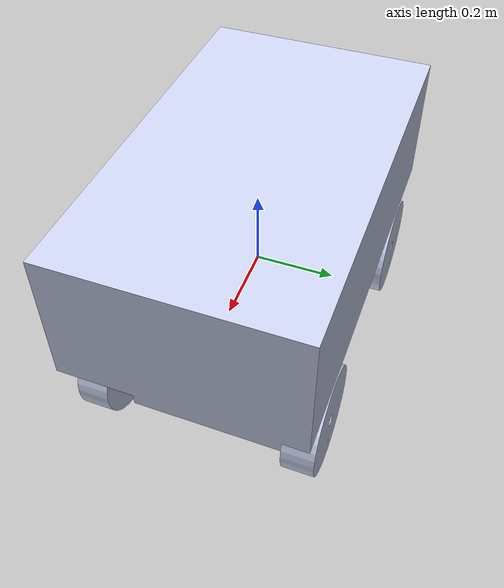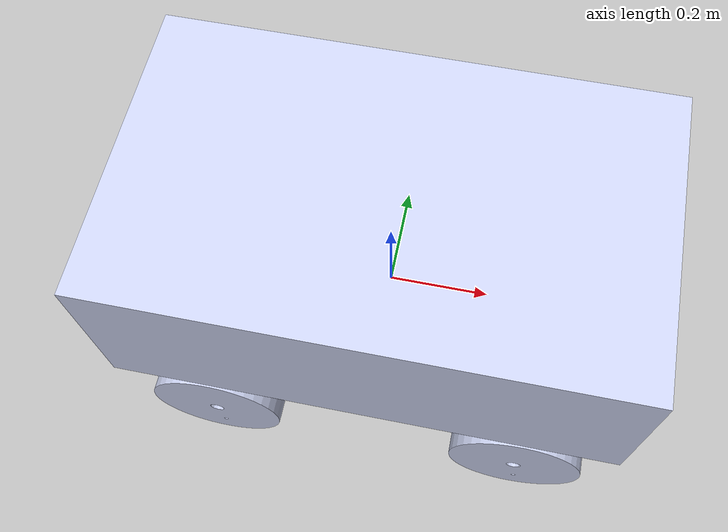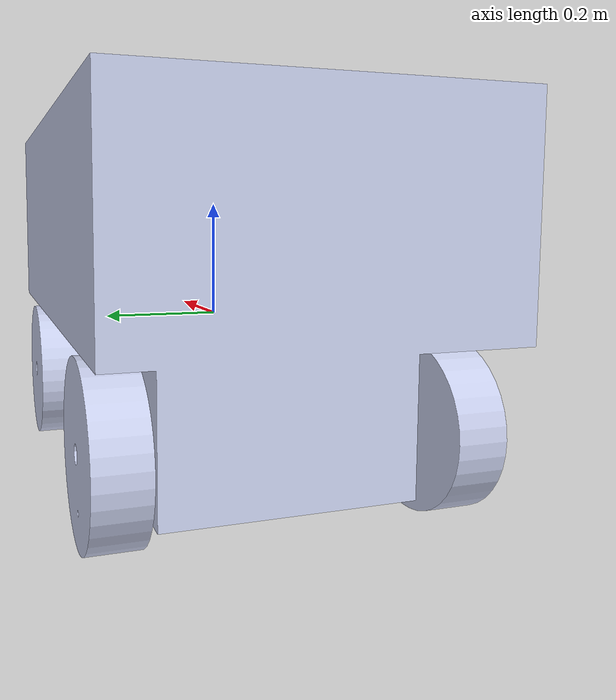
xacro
<?xml version="1.0" ?>
<!-- |    This document was autogenerated by xacro from /home/vboxuser/urdf/Diff_Drive_1.4.urdf | -->
<!-- |    EDITING THIS FILE BY HAND IS NOT RECOMMENDED                                 | -->
<robot name="Diff_Drive_1.4">
  <link name="base_link_diff">
    <inertial>
      <origin rpy="0 0 0" xyz="-3.1183E-17 -3.4795E-17 0.095859"/>
      <mass value="285.23"/>
      <inertia ixx="14.835" ixy="7.0897E-16" ixz="2.2616E-15" iyy="28.56" iyz="1.454E-15" izz="28.351"/>
    </inertial>
    <visual>
      <origin rpy="0 0 0" xyz="0 0 0"/>
      <geometry>
        <mesh filename="package://diff_drivebot/meshes/visual/base_link_diff.dae"/>
      </geometry>
      <material name="">
        <color rgba="0.79216 0.81961 0.93333 1"/>
      </material>
    </visual>
    <collision>
      <origin rpy="0 0 0" xyz="0 0 0"/>
      <geometry>
        <mesh filename="package://diff_drivebot/meshes/collision/base_link_diff.STL"/>
      </geometry>
    </collision>
  </link>
  <link name="LFW">
    <inertial>
      <origin rpy="0 0 0" xyz="0 0.04 0.00011127"/>
      <mass value="4.5176"/>
      <inertia ixx="0.023236" ixy="-3.6244E-18" ixz="0" iyy="0.041693" iyz="1.3687E-18" izz="0.023276"/>
    </inertial>
    <visual>
      <origin rpy="0 0 0" xyz="0 0 0"/>
      <geometry>
        <mesh filename="package://diff_drivebot/meshes/visual/LFW.dae"/>
      </geometry>
      <material name="">
        <color rgba="0.79216 0.81961 0.93333 1"/>
      </material>
    </visual>
    <collision>
      <origin rpy="0 0 0" xyz="0 0 0"/>
      <geometry>
        <mesh filename="package://diff_drivebot/meshes/collision/LFW.STL"/>
      </geometry>
    </collision>
  </link>
  <joint name="J1" type="continuous">
    <origin rpy="0 0.17095 0" xyz="-0.315 0.22 -0.14756"/>
    <parent link="base_link_diff"/>
    <child link="LFW"/>
    <axis xyz="0 1 0"/>
  </joint>
  <link name="LRW">
    <inertial>
      <origin rpy="0 0 0" xyz="0 0.04 0.00011127"/>
      <mass value="4.5176"/>
      <inertia ixx="0.023236" ixy="2.5204E-17" ixz="-2.1684E-19" iyy="0.041693" iyz="3.1904E-18" izz="0.023276"/>
    </inertial>
    <visual>
      <origin rpy="0 0 0" xyz="0 0 0"/>
      <geometry>
        <mesh filename="package://diff_drivebot/meshes/visual/LRW.dae"/>
      </geometry>
      <material name="">
        <color rgba="0.79216 0.81961 0.93333 1"/>
      </material>
    </visual>
    <collision>
      <origin rpy="0 0 0" xyz="0 0 0"/>
      <geometry>
        <mesh filename="package://diff_drivebot/meshes/collision/LRW.STL"/>
      </geometry>
    </collision>
  </link>
  <joint name="J2" type="continuous">
    <origin rpy="0 -0.10448 0" xyz="0.315 0.22 -0.14756"/>
    <parent link="base_link_diff"/>
    <child link="LRW"/>
    <axis xyz="0 1 0"/>
  </joint>
  <link name="RFW">
    <inertial>
      <origin rpy="0 0 0" xyz="-1.6653E-16 0.04 0.00011127"/>
      <mass value="4.5176"/>
      <inertia ixx="0.023236" ixy="-1.7285E-17" ixz="-2.1684E-19" iyy="0.041693" iyz="-2.8801E-17" izz="0.023276"/>
    </inertial>
    <visual>
      <origin rpy="0 0 0" xyz="0 0 0"/>
      <geometry>
        <mesh filename="package://diff_drivebot/meshes/visual/RFW.dae"/>
      </geometry>
      <material name="">
        <color rgba="0.79216 0.81961 0.93333 1"/>
      </material>
    </visual>
    <collision>
      <origin rpy="0 0 0" xyz="0 0 0"/>
      <geometry>
        <mesh filename="package://diff_drivebot/meshes/collision/RFW.STL"/>
      </geometry>
    </collision>
  </link>
  <joint name="J3" type="continuous">
    <origin rpy="0 0.0769 3.1416" xyz="-0.315 -0.22 -0.14756"/>
    <parent link="base_link_diff"/>
    <child link="RFW"/>
    <axis xyz="0 1 0"/>
  </joint>
  <link name="RRW">
    <inertial>
      <origin rpy="0 0 0" xyz="-5.5511E-17 0.04 0.00011127"/>
      <mass value="4.5176"/>
      <inertia ixx="0.023236" ixy="2.7429E-17" ixz="-1.0842E-18" iyy="0.041693" iyz="-9.0395E-19" izz="0.023276"/>
    </inertial>
    <visual>
      <origin rpy="0 0 0" xyz="0 0 0"/>
      <geometry>
        <mesh filename="package://diff_drivebot/meshes/visual/RRW.dae"/>
      </geometry>
      <material name="">
        <color rgba="0.79216 0.81961 0.93333 1"/>
      </material>
    </visual>
    <collision>
      <origin rpy="0 0 0" xyz="0 0 0"/>
      <geometry>
        <mesh filename="package://diff_drivebot/meshes/collision/RRW.STL"/>
      </geometry>
    </collision>
  </link>
  <joint name="J4" type="continuous">
    <origin rpy="0 0.12074 3.1416" xyz="0.315 -0.22 -0.14756"/>
    <parent link="base_link_diff"/>
    <child link="RRW"/>
    <axis xyz="0 1 0"/>
  </joint>
  <ros2_control name="GazeboSimSystem" type="system">
  <hardware>
   <plugin>gz_ros2_control/GazeboSimSystem</plugin>
  </hardware>
  <joint name="J1">
   <command_interface name="velocity"/>
    <param name="min">-1</param>
    <param name="max">1</param>
   <state_interface name="position"/>
   <state_interface name="velocity"/>
  </joint>
  <joint name="J2">
   <command_interface name="velocity"/>
    <param name="min">-1</param>
    <param name="max">1</param>
   <state_interface name="position"/>
   <state_interface name="velocity"/>
  </joint>
  <joint name="J3">
   <command_interface name="velocity"/>
    <param name="min">-1</param>
    <param name="max">1</param>
   <state_interface name="position"/>
   <state_interface name="velocity"/>
  </joint>
  <joint name="J4">
   <command_interface name="velocity"/>
    <param name="min">-1</param>
    <param name="max">1</param>
   <state_interface name="position"/>
   <state_interface name="velocity"/>
  </joint>
 </ros2_control>
 <gazebo>
  <plugin filename="gz_ros2_control-system" name="gz_ros2_control::GazeboSimROS2ControlPlugin">
    <robotParam>robot_description</robotParam>
    <robotParam_node>robot_state_publisher</robotParam_node>
    <parameters>$(find diff_drivebot)/config/diff_control.yaml</parameters>
  </plugin>
 </gazebo>
</robot>
